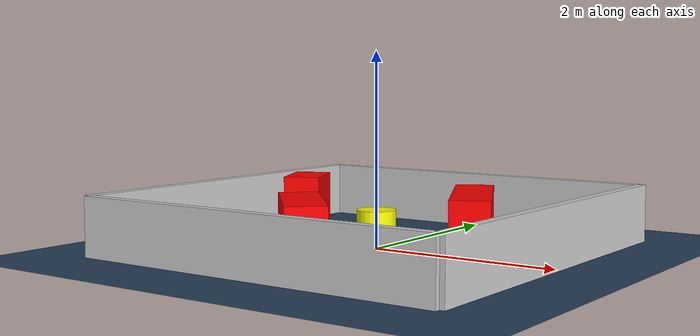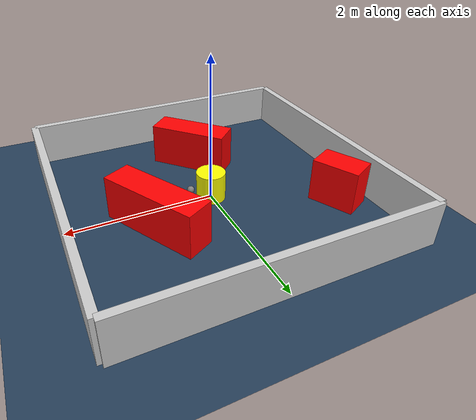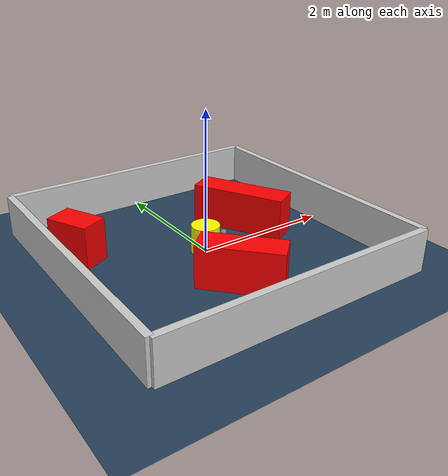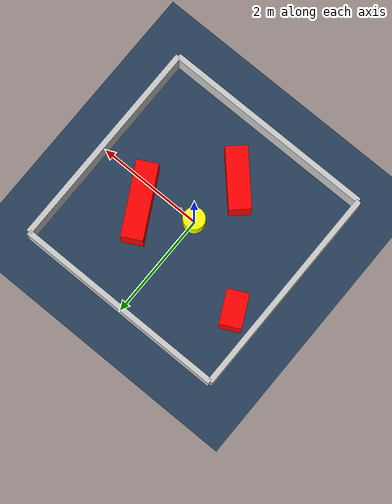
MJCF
<?xml version="1.0" ?>
<mujoco model="generated_environment">
  <option timestep="0.01" integrator="RK4" cone="elliptic"/>
  <default>
    <geom density="1"/>
  </default>
  <asset>
    <texture builtin="gradient" height="3072" rgb1="0.3 0.5 0.7" rgb2="0 0 0" type="skybox" width="512"/>
    <texture builtin="checker" height="300" mark="edge" markrgb="0.8 0.8 0.8" name="groundplane" rgb1="0.2 0.3 0.4" rgb2="0.1 0.2 0.3" type="2d" width="300"/>
    <material name="groundplane" reflectance="0.2" texrepeat="5 5" texture="groundplane" texuniform="true"/>
    <material name="robot" rgba="0.0 1.0 0.0 1"/>
  </asset>
  <worldbody>
    <light dir="0 0 -1" directional="true" pos="0 0 1.5"/>
    <geom condim="4" friction="1.0 0.005 0.001" material="groundplane" name="floor" size="0 0 0.05" type="plane"/>
    <body name="walls">
      <geom name="wall_1" condim="4" pos="-2.0 0.0 0.3" rgba="0.800000011920929 0.800000011920929 0.800000011920929 1.0" size="0.05 2.0 0.3" type="box"/>
      <geom name="wall_2" condim="4" pos="2.0 0.0 0.3" rgba="0.800000011920929 0.800000011920929 0.800000011920929 1.0" size="0.05 2.0 0.3" type="box"/>
      <geom name="wall_3" condim="4" pos="0.0 -2.0 0.3" rgba="0.800000011920929 0.800000011920929 0.800000011920929 1.0" size="2.0 0.05 0.3" type="box"/>
      <geom name="wall_4" condim="4" pos="0.0 2.0 0.3" rgba="0.800000011920929 0.800000011920929 0.800000011920929 1.0" size="2.0 0.05 0.3" type="box"/>
    </body>
    <body name="robot">
      <joint name="joint_x" type="slide" pos="0 0 0" axis="1 0 0"/>
      <joint name="joint_y" type="slide" pos="0 0 0" axis="0 1 0"/>
      <geom name="robot" type="sphere" pos="0.3 0.0 0.2" size="0.05" mass="5." friction="1.0 0.005 0.0001" condim="4" rgba="0.5 0.5 0.5 1.0"/>
      <site name="sensor_ball"/>
    </body>
    <body name="obstacle_movable_1">
      <geom name="obstacle_movable_1" condim="4" pos="0.0 0.0 0.2" euler="0 0 0.0" friction="1.0 0.005 0.001" rgba="1.0 1.0 0.0 1.0" size="0.2 0.2 0.0" type="cylinder" mass="0.1"/>
      <joint type="free"/>
    </body>
    <body name="obstacle_2_static">
      <geom name="obstacle_2_static" condim="4" pos="-0.15053475711788944 -1.0044557093649176 0.3" euler="0 0 312.8196461809429" friction="1.0 0.005 0.001" rgba="1 0 0 1" size="0.5581201256714123 0.2 0.3" type="box"/>
    </body>
    <body name="obstacle_3_static">
      <geom name="obstacle_3_static" condim="4" pos="0.9009888699694166 0.3719821984035476 0.3" euler="0 0 298.20546258675824" friction="1.0 0.005 0.001" rgba="1 0 0 1" size="0.6857790481627319 0.2 0.3" type="box"/>
    </body>
    <body name="obstacle_4_static">
      <geom name="obstacle_4_static" condim="4" pos="-1.5308706399659031 0.7897140291922338 0.3" euler="0 0 296.13585207375917" friction="1.0 0.005 0.001" rgba="1 0 0 1" size="0.31510265050411923 0.2 0.3" type="box"/>
    </body>
  </worldbody>
  <actuator>
    <motor name="actuator_x" joint="joint_x" gear="1" ctrlrange="-1 1"/>
    <motor name="actuator_y" joint="joint_y" gear="1" ctrlrange="-1 1"/>
  </actuator>
</mujoco>
